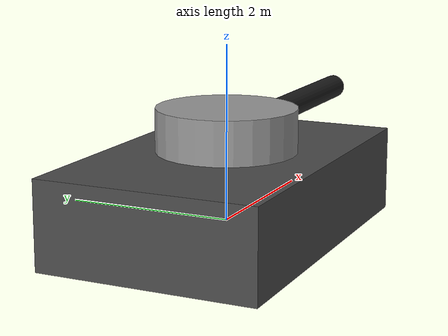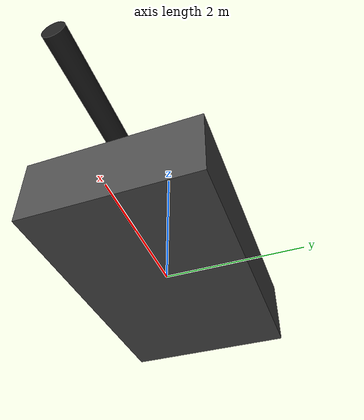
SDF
<?xml version="1.0" ?>
<sdf version="1.6">
  <model name="tank">
    <static>false</static>

    <!-- Main body -->
    <link name="chassis">
      <pose>0 0 0.3 0 0 0</pose>
      <inertial>
        <mass>1000</mass>
        <inertia>
          <ixx>100</ixx>
          <iyy>200</iyy>
          <izz>100</izz>
        </inertia>
      </inertial>

      <collision name="collision">
        <geometry>
          <box>
            <size>4 2.5 1</size>
          </box>
        </geometry>
      </collision>

      <visual name="visual">
        <geometry>
          <box>
            <size>4 2.5 1</size>
          </box>
        </geometry>
        <material>
          <script>
            <uri>file://media/materials/scripts/gazebo.material</uri>
            <name>Gazebo/DarkGrey</name>
          </script>
        </material>
      </visual>
    </link>

    <!-- Turret -->
    <link name="turret">
      <pose>0 0 1.0 0 0 0</pose>
      <inertial>
        <mass>200</mass>
        <inertia>
          <ixx>10</ixx>
          <iyy>10</iyy>
          <izz>10</izz>
        </inertia>
      </inertial>

      <collision name="collision">
        <geometry>
          <cylinder>
            <radius>0.8</radius>
            <length>0.6</length>
          </cylinder>
        </geometry>
      </collision>

      <visual name="visual">
        <geometry>
          <cylinder>
            <radius>0.8</radius>
            <length>0.6</length>
          </cylinder>
        </geometry>
        <material>
          <script>
            <uri>file://media/materials/scripts/gazebo.material</uri>
            <name>Gazebo/Grey</name>
          </script>
        </material>
      </visual>
    </link>

    <!-- Cannon -->
    <link name="cannon">
      <pose>1.5 0 1.0 0 0 0</pose>
      <inertial>
        <mass>50</mass>
        <inertia>
          <ixx>1</ixx>
          <iyy>1</iyy>
          <izz>1</izz>
        </inertia>
      </inertial>

      <collision name="collision">
        <geometry>
          <cylinder>
            <radius>0.15</radius>
            <length>2</length>
          </cylinder>
        </geometry>
        <pose>1 0 0 0 1.5708 0</pose>
      </collision>

      <visual name="visual">
        <geometry>
          <cylinder>
            <radius>0.15</radius>
            <length>2</length>
          </cylinder>
        </geometry>
        <pose>1 0 0 0 1.5708 0</pose>
        <material>
          <script>
            <uri>file://media/materials/scripts/gazebo.material</uri>
            <name>Gazebo/Black</name>
          </script>
        </material>
      </visual>
    </link>

    <!-- Joints -->
    <joint name="turret_joint" type="revolute">
      <parent>chassis</parent>
      <child>turret</child>
      <axis>
        <xyz>0 0 1</xyz>
        <limit>
          <lower>-3.14159</lower>
          <upper>3.14159</upper>
        </limit>
      </axis>
    </joint>

    <joint name="cannon_joint" type="fixed">
      <parent>turret</parent>
      <child>cannon</child>
    </joint>

    <!-- Plugin for ground truth pose -->
    <plugin name="ground_truth" filename="libgazebo_ros_p3d.so">
      <alwaysOn>true</alwaysOn>
      <updateRate>50.0</updateRate>
      <bodyName>chassis</bodyName>
      <topicName>/tank/ground_truth/pose</topicName>
      <gaussianNoise>0.0</gaussianNoise>
      <frameName>world</frameName>
      <xyzOffsets>0 0 0</xyzOffsets>
      <rpyOffsets>0 0 0</rpyOffsets>
    </plugin>

  </model>
</sdf>
